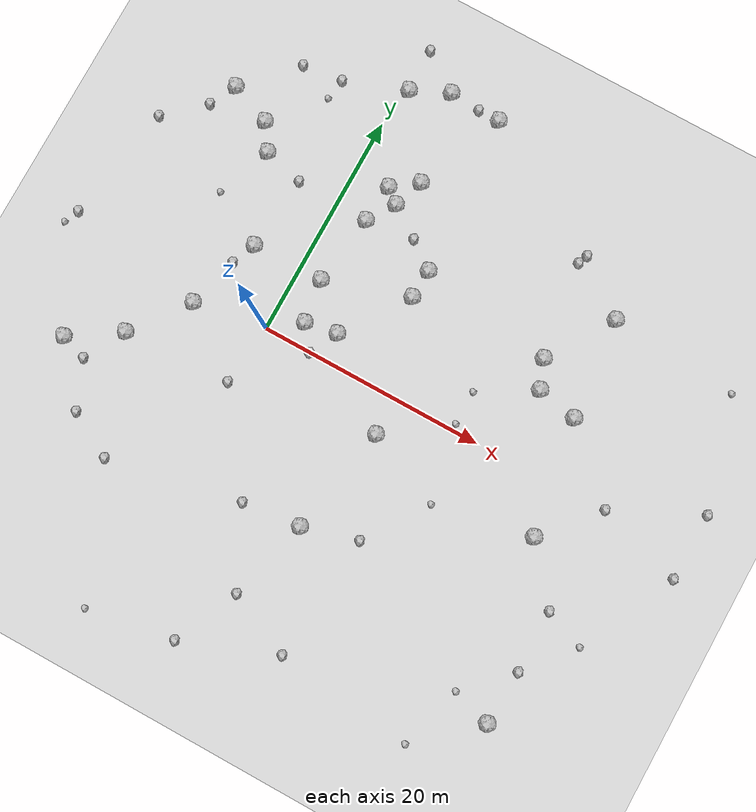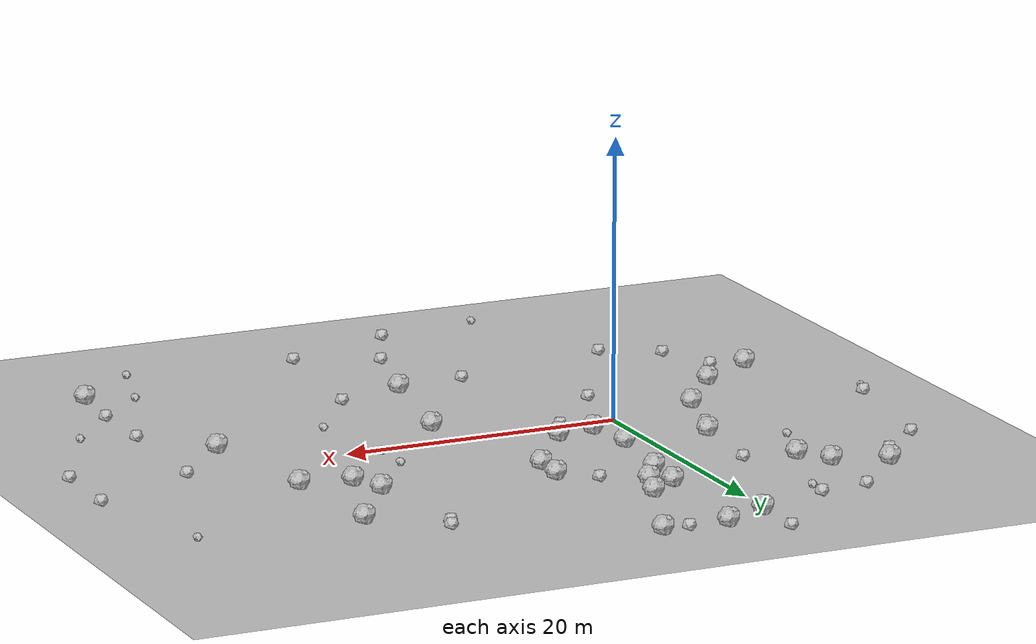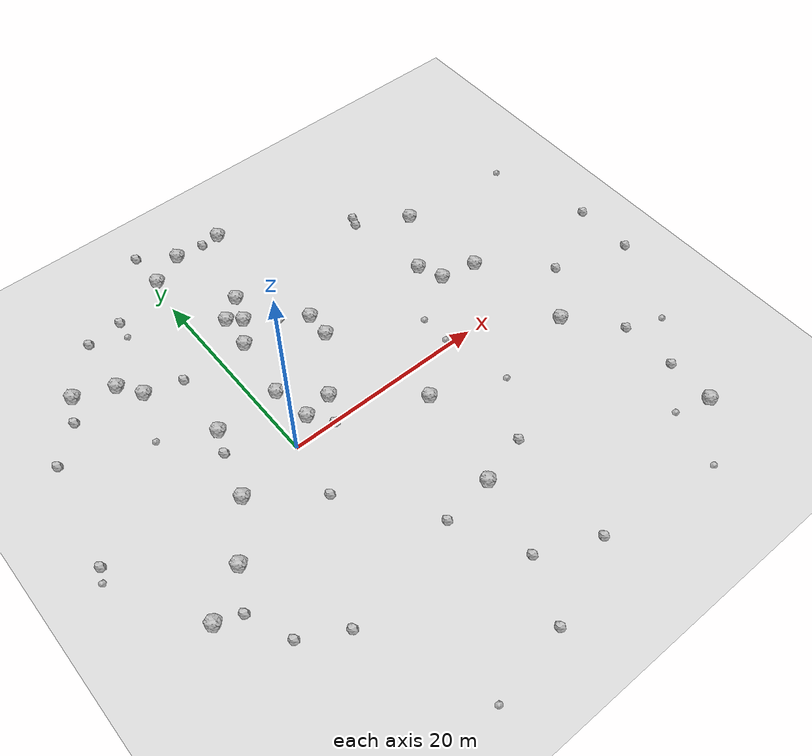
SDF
<sdf version="1.6">
 <world name="default">
  <include><uri>model://custom_ground</uri></include>
  <include><uri>model://sun</uri></include>
  <model name="rock1_0_0">
   <include><uri>model://rock1</uri><pose>4.436751652446244 14.410133604049683 0.5 0 0 0</pose></include>
  </model>
  <model name="rock1_0_1">
   <include><uri>model://rock1</uri><pose>5.451547144910947 2.469839490165114 0.5 0 0 0</pose></include>
  </model>
  <model name="rock1_0_2">
   <include><uri>model://rock1</uri><pose>2.039369760646231 5.7592562745307205 0.5 0 0 0</pose></include>
  </model>
  <model name="rock1_0_3">
   <include><uri>model://rock1</uri><pose>9.557093165146753 10.754722590684267 0.5 0 0 0</pose></include>
  </model>
  <model name="rock1_0_4">
   <include><uri>model://rock1</uri><pose>8.569090244645242 24.957271792820713 0.5 0 0 0</pose></include>
  </model>
  <model name="rock1_0_5">
   <include><uri>model://rock1</uri><pose>25.19521828155984 14.6509421780056 0.5 0 0 0</pose></include>
  </model>
  <model name="rock1_0_6">
   <include><uri>model://rock1</uri><pose>26.00777376279452 5.7297127285745475 0.5 0 0 0</pose></include>
  </model>
  <model name="rock1_0_7">
   <include><uri>model://rock1</uri><pose>31.463860327236787 -19.443692855537986 0.5 0 0 0</pose></include>
  </model>
  <model name="rock1_0_8">
   <include><uri>model://rock1</uri><pose>0.6382978725062607 23.617270814070388 0.5 0 0 0</pose></include>
  </model>
  <model name="rock1_0_9">
   <include><uri>model://rock1</uri><pose>10.536346866945493 -12.95001865185105 0.5 0 0 0</pose></include>
  </model>
  <model name="rock1_0_10">
   <include><uri>model://rock1</uri><pose>-4.279022639600774 5.637594169594088 0.5 0 0 0</pose></include>
  </model>
  <model name="rock1_0_11">
   <include><uri>model://rock1</uri><pose>-14.343713115884073 -8.70272914112805 0.5 0 0 0</pose></include>
  </model>
  <model name="rock1_0_12">
   <include><uri>model://rock1</uri><pose>27.721575073597094 -4.463547059237165 0.5 0 0 0</pose></include>
  </model>
  <model name="rock1_0_13">
   <include><uri>model://rock1</uri><pose>22.438288939993384 6.450325348294726 0.5 0 0 0</pose></include>
  </model>
  <model name="rock1_0_14">
   <include><uri>model://rock1</uri><pose>-7.236137591150193 13.148492995167722 0.5 0 0 0</pose></include>
  </model>
  <model name="rock1_0_15">
   <include><uri>model://rock1</uri><pose>2.885902249728421 12.0091837374911 0.5 0 0 0</pose></include>
  </model>
  <model name="rock1_0_16">
   <include><uri>model://rock1</uri><pose>21.46803192961429 8.91738948610972 0.5 0 0 0</pose></include>
  </model>
  <model name="rock1_0_17">
   <include><uri>model://rock1</uri><pose>-6.357542372282143 -1.035538021041745 0.5 0 0 0</pose></include>
  </model>
  <model name="rock1_0_18">
   <include><uri>model://rock1</uri><pose>5.3826426561761025 17.063228064147395 0.5 0 0 0</pose></include>
  </model>
  <model name="rock1_0_19">
   <include><uri>model://rock1</uri><pose>-8.72861266490964 15.36341996497363 0.5 0 0 0</pose></include>
  </model>
  <model name="rock1_0_20">
   <include><uri>model://rock1</uri><pose>-10.033470325011988 -5.906808238683137 0.5 0 0 0</pose></include>
  </model>
  <model name="rock1_0_21">
   <include><uri>model://rock1</uri><pose>-12.388801369145355 16.816526027362585 0.5 0 0 0</pose></include>
  </model>
  <model name="rock1_0_22">
   <include><uri>model://rock1</uri><pose>3.9101027697612807 25.140264195898574 0.5 0 0 0</pose></include>
  </model>
  <model name="rock1_0_23">
   <include><uri>model://rock1</uri><pose>12.328918532682806 -3.3340040170427656 0.5 0 0 0</pose></include>
  </model>
  <model name="rock1_0_24">
   <include><uri>model://rock1</uri><pose>9.43279041967963 8.16219149374615 0.5 0 0 0</pose></include>
  </model>
  <model name="rock1_0_25">
   <include><uri>model://rock1</uri><pose>2.623323046523879 1.973246205890856 0.5 0 0 0</pose></include>
  </model>
  <model name="rock1_0_26">
   <include><uri>model://rock1</uri><pose>3.171417202744557 15.427488481348696 0.5 0 0 0</pose></include>
  </model>
  <model name="rock2_0_0">
   <include><uri>model://rock2</uri><pose>-13.634742730561396 14.472386346274511 0.3 0 0 0</pose></include>
  </model>
  <model name="rock2_0_1">
   <include><uri>model://rock2</uri><pose>31.653937200328826 -9.170126971119533 0.3 0 0 0</pose></include>
  </model>
  <model name="rock2_0_2">
   <include><uri>model://rock2</uri><pose>-6.347682483316726 -15.843913862670231 0.3 0 0 0</pose></include>
  </model>
  <model name="rock2_0_3">
   <include><uri>model://rock2</uri><pose>8.65630246268983 -20.20341482343067 0.3 0 0 0</pose></include>
  </model>
  <model name="rock2_0_4">
   <include><uri>model://rock2</uri><pose>15.363129498251588 -11.614956824108297 0.3 0 0 0</pose></include>
  </model>
  <model name="rock2_0_5">
   <include><uri>model://rock2</uri><pose>7.143466866413238 12.54947653820561 0.3 0 0 0</pose></include>
  </model>
  <model name="rock2_0_6">
   <include><uri>model://rock2</uri><pose>-0.5718435208473309 -5.451358076295001 0.3 0 0 0</pose></include>
  </model>
  <model name="rock2_0_7">
   <include><uri>model://rock2</uri><pose>-5.185281208812116 3.516838969603711 0.3 0 0 0</pose></include>
  </model>
  <model name="rock2_0_8">
   <include><uri>model://rock2</uri><pose>31.73814003964086 -14.675738689536594 0.3 0 0 0</pose></include>
  </model>
  <model name="rock2_0_9">
   <include><uri>model://rock2</uri><pose>31.794104935138968 0.29893528324365803 0.3 0 0 0</pose></include>
  </model>
  <model name="rock2_0_10">
   <include><uri>model://rock2</uri><pose>-16.905817389030556 11.472546958792158 0.3 0 0 0</pose></include>
  </model>
  <model name="rock2_0_11">
   <include><uri>model://rock2</uri><pose>20.565086074945405 18.315427423596844 0.3 0 0 0</pose></include>
  </model>
  <model name="rock2_0_12">
   <include><uri>model://rock2</uri><pose>-12.075251224398277 -9.495229649303294 0.3 0 0 0</pose></include>
  </model>
  <model name="rock2_0_13">
   <include><uri>model://rock2</uri><pose>-10.33960697015848 -13.644311204722815 0.3 0 0 0</pose></include>
  </model>
  <model name="rock2_0_14">
   <include><uri>model://rock2</uri><pose>-8.354175974686374 21.242082714067053 0.3 0 0 0</pose></include>
  </model>
  <model name="rock2_0_15">
   <include><uri>model://rock2</uri><pose>6.093797600066097 -25.88805142847471 0.3 0 0 0</pose></include>
  </model>
  <model name="rock2_0_16">
   <include><uri>model://rock2</uri><pose>20.220278876345205 17.42255028748636 0.3 0 0 0</pose></include>
  </model>
  <model name="rock2_0_17">
   <include><uri>model://rock2</uri><pose>-3.709807445781159 12.240345106915825 0.3 0 0 0</pose></include>
  </model>
  <model name="rock2_0_18">
   <include><uri>model://rock2</uri><pose>5.397978634082719 -13.524539263917923 0.3 0 0 0</pose></include>
  </model>
  <model name="rock2_0_19">
   <include><uri>model://rock2</uri><pose>4.133253933275281 -0.04876332923991811 0.3 0 0 0</pose></include>
  </model>
  <model name="rock2_0_20">
   <include><uri>model://rock2</uri><pose>39.293594061914035 -1.9893136835711474 0.3 0 0 0</pose></include>
  </model>
  <model name="rock2_0_21">
   <include><uri>model://rock2</uri><pose>0.5238871929838034 27.586370560110552 0.3 0 0 0</pose></include>
  </model>
  <model name="rock2_0_22">
   <include><uri>model://rock2</uri><pose>-18.73554846529414 1.053708532696497 0.3 0 0 0</pose></include>
  </model>
  <model name="rock2_0_23">
   <include><uri>model://rock2</uri><pose>39.3551393578617 3.948600704092975 0.3 0 0 0</pose></include>
  </model>
  <model name="rock2_0_24">
   <include><uri>model://rock2</uri><pose>6.626157747977672 24.977075043020996 0.3 0 0 0</pose></include>
  </model>
  <model name="rock2_0_25">
   <include><uri>model://rock2</uri><pose>-4.801363539373693 21.651254442495862 0.3 0 0 0</pose></include>
  </model>
  <model name="rock2_0_26">
   <include><uri>model://rock2</uri><pose>14.33115412496587 -22.722570753375116 0.3 0 0 0</pose></include>
  </model>
  <model name="rock3_0_0">
   <include><uri>model://rock3</uri><pose>-9.11054216891653 8.23558673030226 0.2 0 0 0</pose></include>
  </model>
  <model name="rock3_0_1">
   <include><uri>model://rock3</uri><pose>26.446973227016002 -24.13894323538928 0.2 0 0 0</pose></include>
  </model>
  <model name="rock3_0_2">
   <include><uri>model://rock3</uri><pose>-19.321364664483006 -0.3095375663214952 0.2 0 0 0</pose></include>
  </model>
  <model name="rock3_0_3">
   <include><uri>model://rock3</uri><pose>35.18048044829002 -10.571178731496179 0.2 0 0 0</pose></include>
  </model>
  <model name="rock3_0_4">
   <include><uri>model://rock3</uri><pose>-5.114025809378489 19.71614674543607 0.2 0 0 0</pose></include>
  </model>
  <model name="rock3_0_5">
   <include><uri>model://rock3</uri><pose>36.500058359051614 13.800045555039574 0.2 0 0 0</pose></include>
  </model>
  <model name="rock3_0_6">
   <include><uri>model://rock3</uri><pose>19.052700948824345 -6.234025556087744 0.2 0 0 0</pose></include>
  </model>
  <model name="rock3_0_7">
   <include><uri>model://rock3</uri><pose>17.6508096533913 3.6043165236830745 0.2 0 0 0</pose></include>
  </model>
  <model name="rock3_0_8">
   <include><uri>model://rock3</uri><pose>28.030526483543667 -18.49327971322173 0.2 0 0 0</pose></include>
  </model>
  <model name="rock3_0_9">
   <include><uri>model://rock3</uri><pose>17.654369967737125 0.5694014930076783 0.2 0 0 0</pose></include>
  </model>
  <model name="rock3_0_10">
   <include><uri>model://rock3</uri><pose>-1.6099524395832496 -27.248615685026632 0.2 0 0 0</pose></include>
  </model>
 </world>
</sdf>
